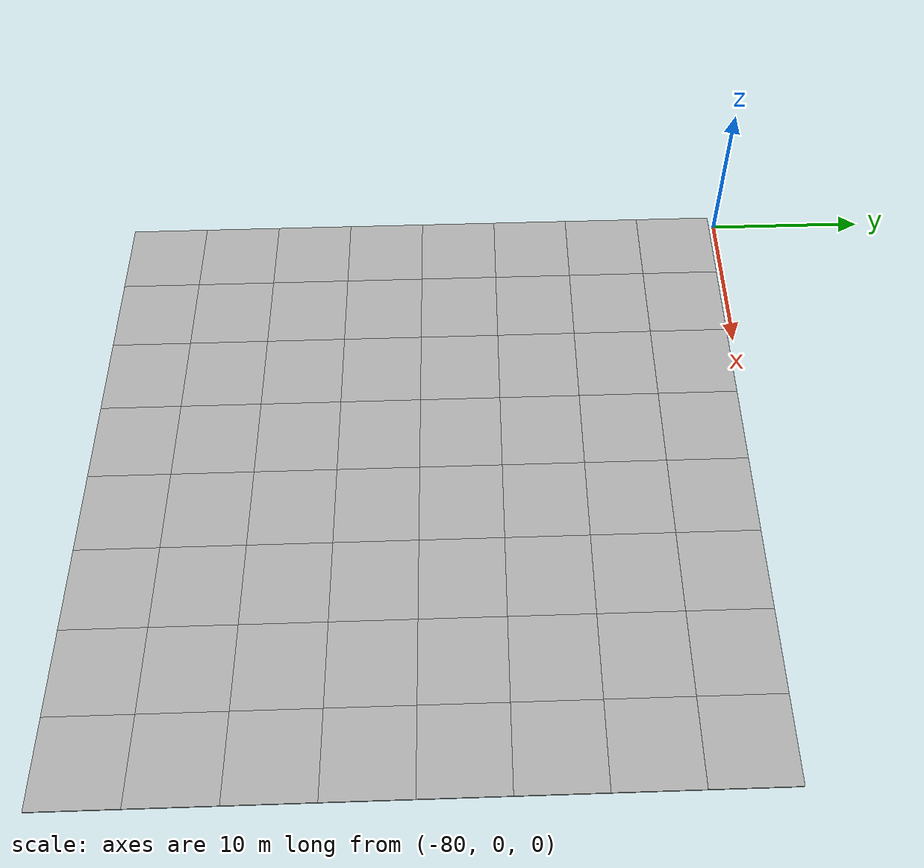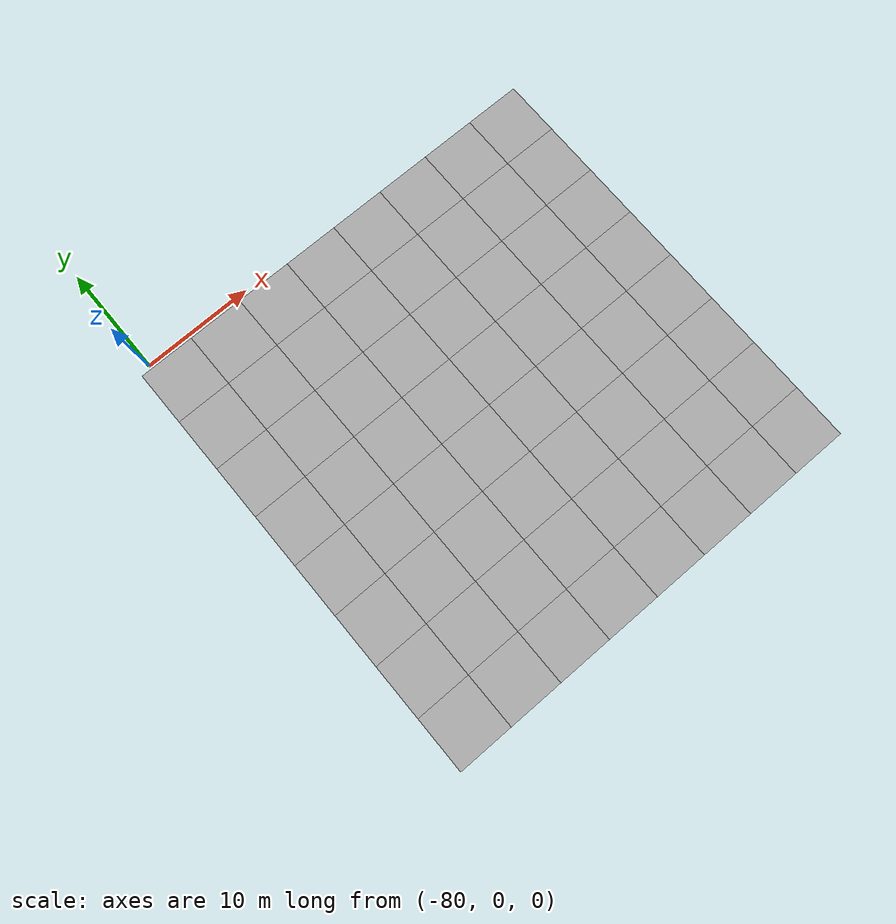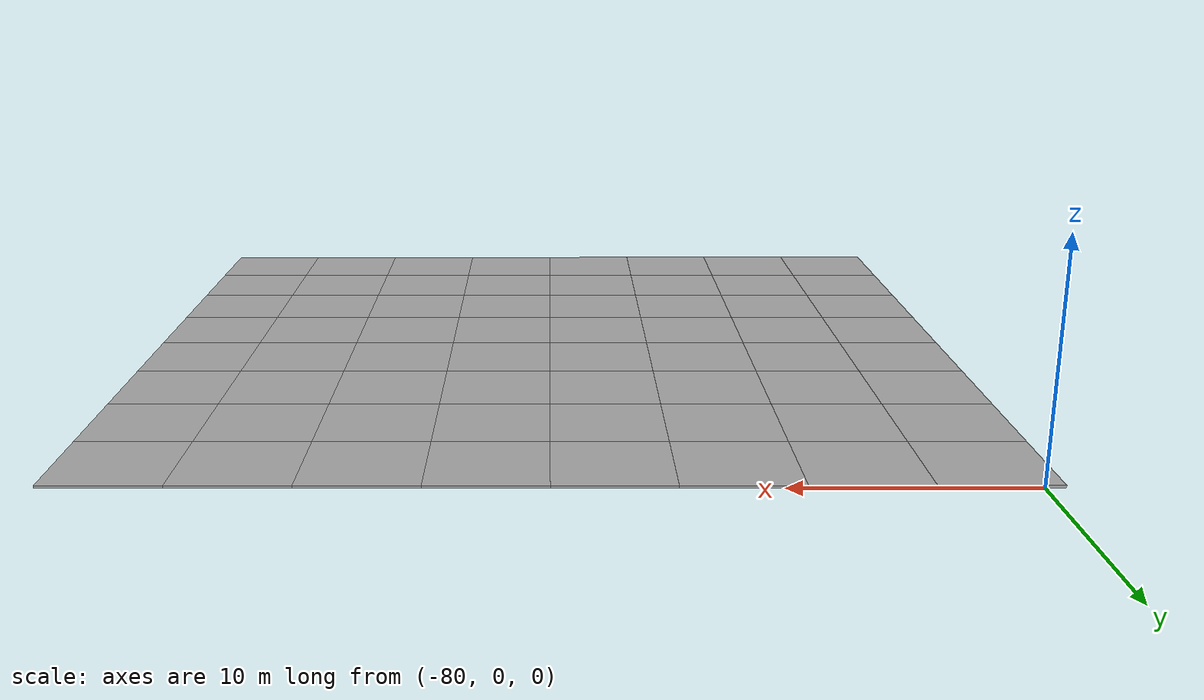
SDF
<sdf version="1.7">
 <world name="default">
  <model name="mud_plane_80x80_2">
   <model name="mud_plane_40x40_1">
    <model name="mud_plane_20x20">
     <model name="mud_plane">
      <static>1</static>
      <link name="link">
       <collision name="collision"><geometry><box><size>10 10 0.1</size></box></geometry></collision>
       <visual name="visual_1">
        <pose>-2.5 2.5 -0.05 0 -0 0</pose>
        <cast_shadows>0</cast_shadows>
        <geometry><box><size>5 5 0.1</size></box></geometry>
        <material>
         <script>
          <uri>model://mud_plane/materials/scripts</uri>
          <uri>model://mud_plane/materials/textures</uri>
          <name>vrc/mud</name>
         </script>
        </material>
       </visual>
       <visual name="visual_2">
        <pose>2.5 2.5 -0.05 0 -0 0</pose>
        <cast_shadows>0</cast_shadows>
        <geometry><box><size>5 5 0.1</size></box></geometry>
        <material>
         <script>
          <uri>model://mud_plane/materials/scripts</uri>
          <uri>model://mud_plane/materials/textures</uri>
          <name>vrc/mud</name>
         </script>
        </material>
       </visual>
       <visual name="visual_3">
        <pose>2.5 -2.5 -0.05 0 -0 0</pose>
        <cast_shadows>0</cast_shadows>
        <geometry><box><size>5 5 0.1</size></box></geometry>
        <material>
         <script>
          <uri>model://mud_plane/materials/scripts</uri>
          <uri>model://mud_plane/materials/textures</uri>
          <name>vrc/mud</name>
         </script>
        </material>
       </visual>
       <visual name="visual_4">
        <pose>-2.5 -2.5 -0.05 0 -0 0</pose>
        <cast_shadows>0</cast_shadows>
        <geometry><box><size>5 5 0.1</size></box></geometry>
        <material>
         <script>
          <uri>model://mud_plane/materials/scripts</uri>
          <uri>model://mud_plane/materials/textures</uri>
          <name>vrc/mud</name>
         </script>
        </material>
       </visual>
      </link>
      <pose>-4.99986 -4.99991 0 0 -0 0</pose>
     </model>
     <model name="mud_plane_0">
      <static>1</static>
      <link name="link">
       <collision name="collision"><geometry><box><size>10 10 0.1</size></box></geometry></collision>
       <visual name="visual_1">
        <pose>-2.5 2.5 -0.05 0 -0 0</pose>
        <cast_shadows>0</cast_shadows>
        <geometry><box><size>5 5 0.1</size></box></geometry>
        <material>
         <script>
          <uri>model://mud_plane/materials/scripts</uri>
          <uri>model://mud_plane/materials/textures</uri>
          <name>vrc/mud</name>
         </script>
        </material>
       </visual>
       <visual name="visual_2">
        <pose>2.5 2.5 -0.05 0 -0 0</pose>
        <cast_shadows>0</cast_shadows>
        <geometry><box><size>5 5 0.1</size></box></geometry>
        <material>
         <script>
          <uri>model://mud_plane/materials/scripts</uri>
          <uri>model://mud_plane/materials/textures</uri>
          <name>vrc/mud</name>
         </script>
        </material>
       </visual>
       <visual name="visual_3">
        <pose>2.5 -2.5 -0.05 0 -0 0</pose>
        <cast_shadows>0</cast_shadows>
        <geometry><box><size>5 5 0.1</size></box></geometry>
        <material>
         <script>
          <uri>model://mud_plane/materials/scripts</uri>
          <uri>model://mud_plane/materials/textures</uri>
          <name>vrc/mud</name>
         </script>
        </material>
       </visual>
       <visual name="visual_4">
        <pose>-2.5 -2.5 -0.05 0 -0 0</pose>
        <cast_shadows>0</cast_shadows>
        <geometry><box><size>5 5 0.1</size></box></geometry>
        <material>
         <script>
          <uri>model://mud_plane/materials/scripts</uri>
          <uri>model://mud_plane/materials/textures</uri>
          <name>vrc/mud</name>
         </script>
        </material>
       </visual>
      </link>
      <pose>-4.99946 4.99954 0 0 -0 0</pose>
     </model>
     <model name="mud_plane_1">
      <static>1</static>
      <link name="link">
       <collision name="collision"><geometry><box><size>10 10 0.1</size></box></geometry></collision>
       <visual name="visual_1">
        <pose>-2.5 2.5 -0.05 0 -0 0</pose>
        <cast_shadows>0</cast_shadows>
        <geometry><box><size>5 5 0.1</size></box></geometry>
        <material>
         <script>
          <uri>model://mud_plane/materials/scripts</uri>
          <uri>model://mud_plane/materials/textures</uri>
          <name>vrc/mud</name>
         </script>
        </material>
       </visual>
       <visual name="visual_2">
        <pose>2.5 2.5 -0.05 0 -0 0</pose>
        <cast_shadows>0</cast_shadows>
        <geometry><box><size>5 5 0.1</size></box></geometry>
        <material>
         <script>
          <uri>model://mud_plane/materials/scripts</uri>
          <uri>model://mud_plane/materials/textures</uri>
          <name>vrc/mud</name>
         </script>
        </material>
       </visual>
       <visual name="visual_3">
        <pose>2.5 -2.5 -0.05 0 -0 0</pose>
        <cast_shadows>0</cast_shadows>
        <geometry><box><size>5 5 0.1</size></box></geometry>
        <material>
         <script>
          <uri>model://mud_plane/materials/scripts</uri>
          <uri>model://mud_plane/materials/textures</uri>
          <name>vrc/mud</name>
         </script>
        </material>
       </visual>
       <visual name="visual_4">
        <pose>-2.5 -2.5 -0.05 0 -0 0</pose>
        <cast_shadows>0</cast_shadows>
        <geometry><box><size>5 5 0.1</size></box></geometry>
        <material>
         <script>
          <uri>model://mud_plane/materials/scripts</uri>
          <uri>model://mud_plane/materials/textures</uri>
          <name>vrc/mud</name>
         </script>
        </material>
       </visual>
      </link>
      <pose>4.99964 -4.99949 0 0 -0 0</pose>
     </model>
     <model name="mud_plane_2">
      <static>1</static>
      <link name="link">
       <collision name="collision"><geometry><box><size>10 10 0.1</size></box></geometry></collision>
       <visual name="visual_1">
        <pose>-2.5 2.5 -0.05 0 -0 0</pose>
        <cast_shadows>0</cast_shadows>
        <geometry><box><size>5 5 0.1</size></box></geometry>
        <material>
         <script>
          <uri>model://mud_plane/materials/scripts</uri>
          <uri>model://mud_plane/materials/textures</uri>
          <name>vrc/mud</name>
         </script>
        </material>
       </visual>
       <visual name="visual_2">
        <pose>2.5 2.5 -0.05 0 -0 0</pose>
        <cast_shadows>0</cast_shadows>
        <geometry><box><size>5 5 0.1</size></box></geometry>
        <material>
         <script>
          <uri>model://mud_plane/materials/scripts</uri>
          <uri>model://mud_plane/materials/textures</uri>
          <name>vrc/mud</name>
         </script>
        </material>
       </visual>
       <visual name="visual_3">
        <pose>2.5 -2.5 -0.05 0 -0 0</pose>
        <cast_shadows>0</cast_shadows>
        <geometry><box><size>5 5 0.1</size></box></geometry>
        <material>
         <script>
          <uri>model://mud_plane/materials/scripts</uri>
          <uri>model://mud_plane/materials/textures</uri>
          <name>vrc/mud</name>
         </script>
        </material>
       </visual>
       <visual name="visual_4">
        <pose>-2.5 -2.5 -0.05 0 -0 0</pose>
        <cast_shadows>0</cast_shadows>
        <geometry><box><size>5 5 0.1</size></box></geometry>
        <material>
         <script>
          <uri>model://mud_plane/materials/scripts</uri>
          <uri>model://mud_plane/materials/textures</uri>
          <name>vrc/mud</name>
         </script>
        </material>
       </visual>
      </link>
      <pose>4.99967 4.99986 0 0 -0 0</pose>
     </model>
     <static>0</static>
     <pose>-9.99895 9.99843 0 0 -0 0</pose>
    </model>
    <model name="mud_plane_20x20_0">
     <model name="mud_plane">
      <static>1</static>
      <link name="link">
       <collision name="collision"><geometry><box><size>10 10 0.1</size></box></geometry></collision>
       <visual name="visual_1">
        <pose>-2.5 2.5 -0.05 0 -0 0</pose>
        <cast_shadows>0</cast_shadows>
        <geometry><box><size>5 5 0.1</size></box></geometry>
        <material>
         <script>
          <uri>model://mud_plane/materials/scripts</uri>
          <uri>model://mud_plane/materials/textures</uri>
          <name>vrc/mud</name>
         </script>
        </material>
       </visual>
       <visual name="visual_2">
        <pose>2.5 2.5 -0.05 0 -0 0</pose>
        <cast_shadows>0</cast_shadows>
        <geometry><box><size>5 5 0.1</size></box></geometry>
        <material>
         <script>
          <uri>model://mud_plane/materials/scripts</uri>
          <uri>model://mud_plane/materials/textures</uri>
          <name>vrc/mud</name>
         </script>
        </material>
       </visual>
       <visual name="visual_3">
        <pose>2.5 -2.5 -0.05 0 -0 0</pose>
        <cast_shadows>0</cast_shadows>
        <geometry><box><size>5 5 0.1</size></box></geometry>
        <material>
         <script>
          <uri>model://mud_plane/materials/scripts</uri>
          <uri>model://mud_plane/materials/textures</uri>
          <name>vrc/mud</name>
         </script>
        </material>
       </visual>
       <visual name="visual_4">
        <pose>-2.5 -2.5 -0.05 0 -0 0</pose>
        <cast_shadows>0</cast_shadows>
        <geometry><box><size>5 5 0.1</size></box></geometry>
        <material>
         <script>
          <uri>model://mud_plane/materials/scripts</uri>
          <uri>model://mud_plane/materials/textures</uri>
          <name>vrc/mud</name>
         </script>
        </material>
       </visual>
      </link>
      <pose>-4.99986 -4.99991 0 0 -0 0</pose>
     </model>
     <model name="mud_plane_0">
      <static>1</static>
      <link name="link">
       <collision name="collision"><geometry><box><size>10 10 0.1</size></box></geometry></collision>
       <visual name="visual_1">
        <pose>-2.5 2.5 -0.05 0 -0 0</pose>
        <cast_shadows>0</cast_shadows>
        <geometry><box><size>5 5 0.1</size></box></geometry>
        <material>
         <script>
          <uri>model://mud_plane/materials/scripts</uri>
          <uri>model://mud_plane/materials/textures</uri>
          <name>vrc/mud</name>
         </script>
        </material>
       </visual>
       <visual name="visual_2">
        <pose>2.5 2.5 -0.05 0 -0 0</pose>
        <cast_shadows>0</cast_shadows>
        <geometry><box><size>5 5 0.1</size></box></geometry>
        <material>
         <script>
          <uri>model://mud_plane/materials/scripts</uri>
          <uri>model://mud_plane/materials/textures</uri>
          <name>vrc/mud</name>
         </script>
        </material>
       </visual>
       <visual name="visual_3">
        <pose>2.5 -2.5 -0.05 0 -0 0</pose>
        <cast_shadows>0</cast_shadows>
        <geometry><box><size>5 5 0.1</size></box></geometry>
        <material>
         <script>
          <uri>model://mud_plane/materials/scripts</uri>
          <uri>model://mud_plane/materials/textures</uri>
          <name>vrc/mud</name>
         </script>
        </material>
       </visual>
       <visual name="visual_4">
        <pose>-2.5 -2.5 -0.05 0 -0 0</pose>
        <cast_shadows>0</cast_shadows>
        <geometry><box><size>5 5 0.1</size></box></geometry>
        <material>
         <script>
          <uri>model://mud_plane/materials/scripts</uri>
          <uri>model://mud_plane/materials/textures</uri>
          <name>vrc/mud</name>
         </script>
        </material>
       </visual>
      </link>
      <pose>-4.99946 4.99954 0 0 -0 0</pose>
     </model>
     <model name="mud_plane_1">
      <static>1</static>
      <link name="link">
       <collision name="collision"><geometry><box><size>10 10 0.1</size></box></geometry></collision>
       <visual name="visual_1">
        <pose>-2.5 2.5 -0.05 0 -0 0</pose>
        <cast_shadows>0</cast_shadows>
        <geometry><box><size>5 5 0.1</size></box></geometry>
        <material>
         <script>
          <uri>model://mud_plane/materials/scripts</uri>
          <uri>model://mud_plane/materials/textures</uri>
          <name>vrc/mud</name>
         </script>
        </material>
       </visual>
       <visual name="visual_2">
        <pose>2.5 2.5 -0.05 0 -0 0</pose>
        <cast_shadows>0</cast_shadows>
        <geometry><box><size>5 5 0.1</size></box></geometry>
        <material>
         <script>
          <uri>model://mud_plane/materials/scripts</uri>
          <uri>model://mud_plane/materials/textures</uri>
          <name>vrc/mud</name>
         </script>
        </material>
       </visual>
       <visual name="visual_3">
        <pose>2.5 -2.5 -0.05 0 -0 0</pose>
        <cast_shadows>0</cast_shadows>
        <geometry><box><size>5 5 0.1</size></box></geometry>
        <material>
         <script>
          <uri>model://mud_plane/materials/scripts</uri>
          <uri>model://mud_plane/materials/textures</uri>
          <name>vrc/mud</name>
         </script>
        </material>
       </visual>
       <visual name="visual_4">
        <pose>-2.5 -2.5 -0.05 0 -0 0</pose>
        <cast_shadows>0</cast_shadows>
        <geometry><box><size>5 5 0.1</size></box></geometry>
        <material>
         <script>
          <uri>model://mud_plane/materials/scripts</uri>
          <uri>model://mud_plane/materials/textures</uri>
          <name>vrc/mud</name>
         </script>
        </material>
       </visual>
      </link>
      <pose>4.99964 -4.99949 0 0 -0 0</pose>
     </model>
     <model name="mud_plane_2">
      <static>1</static>
      <link name="link">
       <collision name="collision"><geometry><box><size>10 10 0.1</size></box></geometry></collision>
       <visual name="visual_1">
        <pose>-2.5 2.5 -0.05 0 -0 0</pose>
        <cast_shadows>0</cast_shadows>
        <geometry><box><size>5 5 0.1</size></box></geometry>
        <material>
         <script>
          <uri>model://mud_plane/materials/scripts</uri>
          <uri>model://mud_plane/materials/textures</uri>
          <name>vrc/mud</name>
         </script>
        </material>
       </visual>
       <visual name="visual_2">
        <pose>2.5 2.5 -0.05 0 -0 0</pose>
        <cast_shadows>0</cast_shadows>
        <geometry><box><size>5 5 0.1</size></box></geometry>
        <material>
         <script>
          <uri>model://mud_plane/materials/scripts</uri>
          <uri>model://mud_plane/materials/textures</uri>
          <name>vrc/mud</name>
         </script>
        </material>
       </visual>
       <visual name="visual_3">
        <pose>2.5 -2.5 -0.05 0 -0 0</pose>
        <cast_shadows>0</cast_shadows>
        <geometry><box><size>5 5 0.1</size></box></geometry>
        <material>
         <script>
          <uri>model://mud_plane/materials/scripts</uri>
          <uri>model://mud_plane/materials/textures</uri>
          <name>vrc/mud</name>
         </script>
        </material>
       </visual>
       <visual name="visual_4">
        <pose>-2.5 -2.5 -0.05 0 -0 0</pose>
        <cast_shadows>0</cast_shadows>
        <geometry><box><size>5 5 0.1</size></box></geometry>
        <material>
         <script>
          <uri>model://mud_plane/materials/scripts</uri>
          <uri>model://mud_plane/materials/textures</uri>
          <name>vrc/mud</name>
         </script>
        </material>
       </visual>
      </link>
      <pose>4.99967 4.99986 0 0 -0 0</pose>
     </model>
     <static>0</static>
     <pose>9.99933 9.9997 0 0 -0 0</pose>
    </model>
    <model name="mud_plane_20x20_1">
     <model name="mud_plane">
      <static>1</static>
      <link name="link">
       <collision name="collision"><geometry><box><size>10 10 0.1</size></box></geometry></collision>
       <visual name="visual_1">
        <pose>-2.5 2.5 -0.05 0 -0 0</pose>
        <cast_shadows>0</cast_shadows>
        <geometry><box><size>5 5 0.1</size></box></geometry>
        <material>
         <script>
          <uri>model://mud_plane/materials/scripts</uri>
          <uri>model://mud_plane/materials/textures</uri>
          <name>vrc/mud</name>
         </script>
        </material>
       </visual>
       <visual name="visual_2">
        <pose>2.5 2.5 -0.05 0 -0 0</pose>
        <cast_shadows>0</cast_shadows>
        <geometry><box><size>5 5 0.1</size></box></geometry>
        <material>
         <script>
          <uri>model://mud_plane/materials/scripts</uri>
          <uri>model://mud_plane/materials/textures</uri>
          <name>vrc/mud</name>
         </script>
        </material>
       </visual>
       <visual name="visual_3">
        <pose>2.5 -2.5 -0.05 0 -0 0</pose>
        <cast_shadows>0</cast_shadows>
        <geometry><box><size>5 5 0.1</size></box></geometry>
        <material>
         <script>
          <uri>model://mud_plane/materials/scripts</uri>
          <uri>model://mud_plane/materials/textures</uri>
          <name>vrc/mud</name>
         </script>
        </material>
       </visual>
       <visual name="visual_4">
        <pose>-2.5 -2.5 -0.05 0 -0 0</pose>
        <cast_shadows>0</cast_shadows>
        <geometry><box><size>5 5 0.1</size></box></geometry>
        <material>
         <script>
          <uri>model://mud_plane/materials/scripts</uri>
          <uri>model://mud_plane/materials/textures</uri>
          <name>vrc/mud</name>
         </script>
        </material>
       </visual>
      </link>
      <pose>-4.99986 -4.99991 0 0 -0 0</pose>
     </model>
     <model name="mud_plane_0">
      <static>1</static>
      <link name="link">
       <collision name="collision"><geometry><box><size>10 10 0.1</size></box></geometry></collision>
       <visual name="visual_1">
        <pose>-2.5 2.5 -0.05 0 -0 0</pose>
        <cast_shadows>0</cast_shadows>
        <geometry><box><size>5 5 0.1</size></box></geometry>
        <material>
         <script>
          <uri>model://mud_plane/materials/scripts</uri>
          <uri>model://mud_plane/materials/textures</uri>
          <name>vrc/mud</name>
         </script>
        </material>
       </visual>
       <visual name="visual_2">
        <pose>2.5 2.5 -0.05 0 -0 0</pose>
        <cast_shadows>0</cast_shadows>
        <geometry><box><size>5 5 0.1</size></box></geometry>
        <material>
         <script>
          <uri>model://mud_plane/materials/scripts</uri>
          <uri>model://mud_plane/materials/textures</uri>
          <name>vrc/mud</name>
         </script>
        </material>
       </visual>
       <visual name="visual_3">
        <pose>2.5 -2.5 -0.05 0 -0 0</pose>
        <cast_shadows>0</cast_shadows>
        <geometry><box><size>5 5 0.1</size></box></geometry>
        <material>
         <script>
          <uri>model://mud_plane/materials/scripts</uri>
          <uri>model://mud_plane/materials/textures</uri>
          <name>vrc/mud</name>
         </script>
        </material>
       </visual>
       <visual name="visual_4">
        <pose>-2.5 -2.5 -0.05 0 -0 0</pose>
        <cast_shadows>0</cast_shadows>
        <geometry><box><size>5 5 0.1</size></box></geometry>
        <material>
         <script>
          <uri>model://mud_plane/materials/scripts</uri>
          <uri>model://mud_plane/materials/textures</uri>
          <name>vrc/mud</name>
         </script>
        </material>
       </visual>
      </link>
      <pose>-4.99946 4.99954 0 0 -0 0</pose>
     </model>
     <model name="mud_plane_1">
      <static>1</static>
      <link name="link">
       <collision name="collision"><geometry><box><size>10 10 0.1</size></box></geometry></collision>
       <visual name="visual_1">
        <pose>-2.5 2.5 -0.05 0 -0 0</pose>
        <cast_shadows>0</cast_shadows>
        <geometry><box><size>5 5 0.1</size></box></geometry>
        <material>
         <script>
          <uri>model://mud_plane/materials/scripts</uri>
          <uri>model://mud_plane/materials/textures</uri>
          <name>vrc/mud</name>
         </script>
        </material>
       </visual>
       <visual name="visual_2">
        <pose>2.5 2.5 -0.05 0 -0 0</pose>
        <cast_shadows>0</cast_shadows>
        <geometry><box><size>5 5 0.1</size></box></geometry>
        <material>
         <script>
          <uri>model://mud_plane/materials/scripts</uri>
          <uri>model://mud_plane/materials/textures</uri>
          <name>vrc/mud</name>
         </script>
        </material>
       </visual>
       <visual name="visual_3">
        <pose>2.5 -2.5 -0.05 0 -0 0</pose>
        <cast_shadows>0</cast_shadows>
        <geometry><box><size>5 5 0.1</size></box></geometry>
        <material>
         <script>
          <uri>model://mud_plane/materials/scripts</uri>
          <uri>model://mud_plane/materials/textures</uri>
          <name>vrc/mud</name>
         </script>
        </material>
       </visual>
       <visual name="visual_4">
        <pose>-2.5 -2.5 -0.05 0 -0 0</pose>
        <cast_shadows>0</cast_shadows>
        <geometry><box><size>5 5 0.1</size></box></geometry>
        <material>
         <script>
          <uri>model://mud_plane/materials/scripts</uri>
          <uri>model://mud_plane/materials/textures</uri>
          <name>vrc/mud</name>
         </script>
        </material>
       </visual>
      </link>
      <pose>4.99964 -4.99949 0 0 -0 0</pose>
     </model>
     <model name="mud_plane_2">
      <static>1</static>
      <link name="link">
       <collision name="collision"><geometry><box><size>10 10 0.1</size></box></geometry></collision>
       <visual name="visual_1">
        <pose>-2.5 2.5 -0.05 0 -0 0</pose>
        <cast_shadows>0</cast_shadows>
        <geometry><box><size>5 5 0.1</size></box></geometry>
        <material>
         <script>
          <uri>model://mud_plane/materials/scripts</uri>
          <uri>model://mud_plane/materials/textures</uri>
          <name>vrc/mud</name>
         </script>
        </material>
       </visual>
       <visual name="visual_2">
        <pose>2.5 2.5 -0.05 0 -0 0</pose>
        <cast_shadows>0</cast_shadows>
        <geometry><box><size>5 5 0.1</size></box></geometry>
        <material>
         <script>
          <uri>model://mud_plane/materials/scripts</uri>
          <uri>model://mud_plane/materials/textures</uri>
          <name>vrc/mud</name>
         </script>
        </material>
       </visual>
       <visual name="visual_3">
        <pose>2.5 -2.5 -0.05 0 -0 0</pose>
        <cast_shadows>0</cast_shadows>
        <geometry><box><size>5 5 0.1</size></box></geometry>
        <material>
         <script>
          <uri>model://mud_plane/materials/scripts</uri>
          <uri>model://mud_plane/materials/textures</uri>
          <name>vrc/mud</name>
         </script>
        </material>
       </visual>
       <visual name="visual_4">
        <pose>-2.5 -2.5 -0.05 0 -0 0</pose>
        <cast_shadows>0</cast_shadows>
        <geometry><box><size>5 5 0.1</size></box></geometry>
        <material>
         <script>
          <uri>model://mud_plane/materials/scripts</uri>
          <uri>model://mud_plane/materials/textures</uri>
          <name>vrc/mud</name>
         </script>
        </material>
       </visual>
      </link>
      <pose>4.99967 4.99986 0 0 -0 0</pose>
     </model>
     <static>0</static>
     <pose>9.9993 -9.99877 0 0 -0 0</pose>
    </model>
    <model name="mud_plane_20x20_2">
     <model name="mud_plane">
      <static>1</static>
      <link name="link">
       <collision name="collision"><geometry><box><size>10 10 0.1</size></box></geometry></collision>
       <visual name="visual_1">
        <pose>-2.5 2.5 -0.05 0 -0 0</pose>
        <cast_shadows>0</cast_shadows>
        <geometry><box><size>5 5 0.1</size></box></geometry>
        <material>
         <script>
          <uri>model://mud_plane/materials/scripts</uri>
          <uri>model://mud_plane/materials/textures</uri>
          <name>vrc/mud</name>
         </script>
        </material>
       </visual>
       <visual name="visual_2">
        <pose>2.5 2.5 -0.05 0 -0 0</pose>
        <cast_shadows>0</cast_shadows>
        <geometry><box><size>5 5 0.1</size></box></geometry>
        <material>
         <script>
          <uri>model://mud_plane/materials/scripts</uri>
          <uri>model://mud_plane/materials/textures</uri>
          <name>vrc/mud</name>
         </script>
        </material>
       </visual>
       <visual name="visual_3">
        <pose>2.5 -2.5 -0.05 0 -0 0</pose>
        <cast_shadows>0</cast_shadows>
        <geometry><box><size>5 5 0.1</size></box></geometry>
        <material>
         <script>
          <uri>model://mud_plane/materials/scripts</uri>
          <uri>model://mud_plane/materials/textures</uri>
          <name>vrc/mud</name>
         </script>
        </material>
       </visual>
       <visual name="visual_4">
        <pose>-2.5 -2.5 -0.05 0 -0 0</pose>
        <cast_shadows>0</cast_shadows>
        <geometry><box><size>5 5 0.1</size></box></geometry>
        <material>
         <script>
          <uri>model://mud_plane/materials/scripts</uri>
          <uri>model://mud_plane/materials/textures</uri>
          <name>vrc/mud</name>
         </script>
        </material>
       </visual>
      </link>
      <pose>-4.99986 -4.99991 0 0 -0 0</pose>
     </model>
     <model name="mud_plane_0">
      <static>1</static>
      <link name="link">
       <collision name="collision"><geometry><box><size>10 10 0.1</size></box></geometry></collision>
       <visual name="visual_1">
        <pose>-2.5 2.5 -0.05 0 -0 0</pose>
        <cast_shadows>0</cast_shadows>
        <geometry><box><size>5 5 0.1</size></box></geometry>
        <material>
         <script>
          <uri>model://mud_plane/materials/scripts</uri>
          <uri>model://mud_plane/materials/textures</uri>
          <name>vrc/mud</name>
         </script>
        </material>
       </visual>
       <visual name="visual_2">
        <pose>2.5 2.5 -0.05 0 -0 0</pose>
        <cast_shadows>0</cast_shadows>
        <geometry><box><size>5 5 0.1</size></box></geometry>
        <material>
         <script>
          <uri>model://mud_plane/materials/scripts</uri>
          <uri>model://mud_plane/materials/textures</uri>
          <name>vrc/mud</name>
         </script>
        </material>
       </visual>
       <visual name="visual_3">
        <pose>2.5 -2.5 -0.05 0 -0 0</pose>
        <cast_shadows>0</cast_shadows>
        <geometry><box><size>5 5 0.1</size></box></geometry>
        <material>
         <script>
          <uri>model://mud_plane/materials/scripts</uri>
          <uri>model://mud_plane/materials/textures</uri>
          <name>vrc/mud</name>
         </script>
        </material>
       </visual>
       <visual name="visual_4">
        <pose>-2.5 -2.5 -0.05 0 -0 0</pose>
        <cast_shadows>0</cast_shadows>
        <geometry><box><size>5 5 0.1</size></box></geometry>
        <material>
         <script>
          <uri>model://mud_plane/materials/scripts</uri>
          <uri>model://mud_plane/materials/textures</uri>
          <name>vrc/mud</name>
         </script>
        </material>
       </visual>
      </link>
      <pose>-4.99946 4.99954 0 0 -0 0</pose>
     </model>
     <model name="mud_plane_1">
      <static>1</static>
      <link name="link">
       <collision name="collision"><geometry><box><size>10 10 0.1</size></box></geometry></collision>
       <visual name="visual_1">
        <pose>-2.5 2.5 -0.05 0 -0 0</pose>
        <cast_shadows>0</cast_shadows>
        <geometry><box><size>5 5 0.1</size></box></geometry>
        <material>
         <script>
          <uri>model://mud_plane/materials/scripts</uri>
          <uri>model://mud_plane/materials/textures</uri>
          <name>vrc/mud</name>
         </script>
        </material>
       </visual>
       <visual name="visual_2">
        <pose>2.5 2.5 -0.05 0 -0 0</pose>
        <cast_shadows>0</cast_shadows>
        <geometry><box><size>5 5 0.1</size></box></geometry>
        <material>
         <script>
          <uri>model://mud_plane/materials/scripts</uri>
          <uri>model://mud_plane/materials/textures</uri>
          <name>vrc/mud</name>
         </script>
        </material>
       </visual>
       <visual name="visual_3">
        <pose>2.5 -2.5 -0.05 0 -0 0</pose>
        <cast_shadows>0</cast_shadows>
        <geometry><box><size>5 5 0.1</size></box></geometry>
        <material>
         <script>
          <uri>model://mud_plane/materials/scripts</uri>
          <uri>model://mud_plane/materials/textures</uri>
          <name>vrc/mud</name>
         </script>
        </material>
       </visual>
       <visual name="visual_4">
        <pose>-2.5 -2.5 -0.05 0 -0 0</pose>
        <cast_shadows>0</cast_shadows>
        <geometry><box><size>5 5 0.1</size></box></geometry>
        <material>
         <script>
          <uri>model://mud_plane/materials/scripts</uri>
          <uri>model://mud_plane/materials/textures</uri>
          <name>vrc/mud</name>
         </script>
        </material>
       </visual>
      </link>
      <pose>4.99964 -4.99949 0 0 -0 0</pose>
     </model>
     <model name="mud_plane_2">
      <static>1</static>
      <link name="link">
       <collision name="collision"><geometry><box><size>10 10 0.1</size></box></geometry></collision>
       <visual name="visual_1">
        <pose>-2.5 2.5 -0.05 0 -0 0</pose>
        <cast_shadows>0</cast_shadows>
        <geometry><box><size>5 5 0.1</size></box></geometry>
        <material>
         <script>
          <uri>model://mud_plane/materials/scripts</uri>
          <uri>model://mud_plane/materials/textures</uri>
          <name>vrc/mud</name>
         </script>
        </material>
       </visual>
       <visual name="visual_2">
        <pose>2.5 2.5 -0.05 0 -0 0</pose>
        <cast_shadows>0</cast_shadows>
        <geometry><box><size>5 5 0.1</size></box></geometry>
        <material>
         <script>
          <uri>model://mud_plane/materials/scripts</uri>
          <uri>model://mud_plane/materials/textures</uri>
          <name>vrc/mud</name>
         </script>
        </material>
       </visual>
       <visual name="visual_3">
        <pose>2.5 -2.5 -0.05 0 -0 0</pose>
        <cast_shadows>0</cast_shadows>
        <geometry><box><size>5 5 0.1</size></box></geometry>
        <material>
         <script>
          <uri>model://mud_plane/materials/scripts</uri>
          <uri>model://mud_plane/materials/textures</uri>
          <name>vrc/mud</name>
         </script>
        </material>
       </visual>
       <visual name="visual_4">
        <pose>-2.5 -2.5 -0.05 0 -0 0</pose>
        <cast_shadows>0</cast_shadows>
        <geometry><box><size>5 5 0.1</size></box></geometry>
        <material>
         <script>
          <uri>model://mud_plane/materials/scripts</uri>
          <uri>model://mud_plane/materials/textures</uri>
          <name>vrc/mud</name>
         </script>
        </material>
       </visual>
      </link>
      <pose>4.99967 4.99986 0 0 -0 0</pose>
     </model>
     <static>0</static>
     <pose>-9.99969 -9.99935 0 0 -0 0</pose>
    </model>
    <static>0</static>
    <pose>-19.9982 19.9977 0 0 -0 0</pose>
   </model>
   <static>0</static>
   <pose>-40.9522 -40.3255 0 0 -0 0</pose>
  </model>
 </world>
</sdf>
